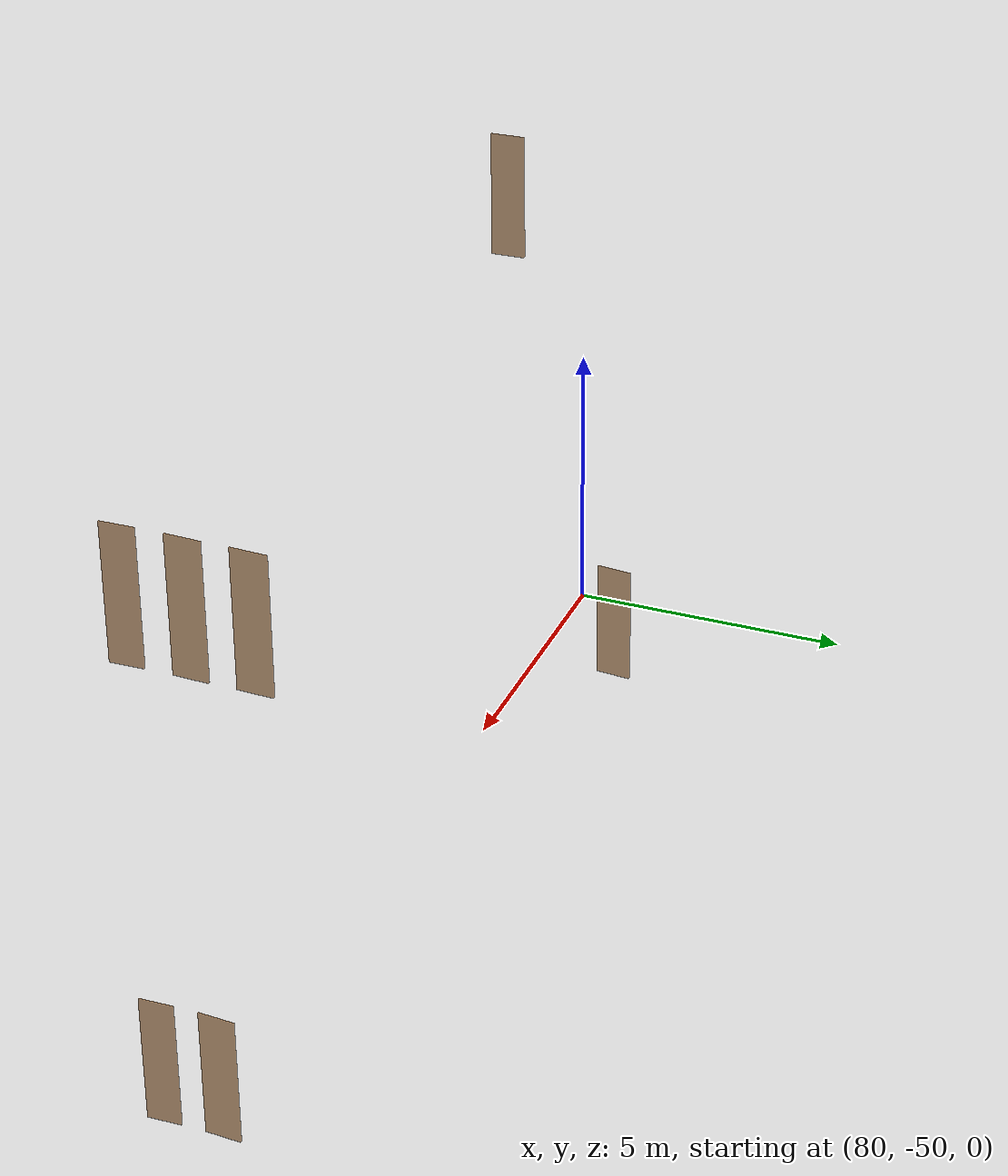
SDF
<sdf version="1.7">
 <world name="sim_world">
  <model name="bano012">
   <pose>82.44700350917586 -48.49807562310532 0.0 0 0 1.470619011720645</pose>
   <link name="right">
    <pose>0 0 1.11 0 0 0</pose>
    <visual name="right_visual">
     <geometry><box><size>0.6442041280268124 0.03 2.2</size></box></geometry>
     <material>
      <ambient>0.5 0.25 0 0.6</ambient>
      <diffuse>0.5 0.25 0 0.6</diffuse>
      <pbr><metal><metalness>0.0</metalness></metal></pbr>
     </material>
    </visual>
    <collision name="right_collision">
     <geometry><box><size>0.6442041280268124 0.03 2.2</size></box></geometry>
     <surface><contact><collide_bitmask>0x02</collide_bitmask></contact></surface>
    </collision>
    <inertial>
     <mass>50.0</mass>
     <inertia><ixx>20.17041666666667</ixx><iyy>21.895828994028278</iyy><izz>1.732912327361607</izz></inertia>
    </inertial>
   </link>
   <joint name="right_joint" type="revolute">
    <parent>world</parent>
    <child>right</child>
    <axis><xyz>0 0 -1</xyz><limit><lower>0</lower><upper>1.57</upper></limit></axis>
    <pose>0.3271020640134062 0 0 0 0 0</pose>
   </joint>
   <plugin name="register_component" filename="libregister_component.so">
    <component name="Door">
     <v_max_door>0.5</v_max_door>
     <a_max_door>0.3</a_max_door>
     <a_nom_door>0.15</a_nom_door>
     <dx_min_door>0.01</dx_min_door>
     <f_max_door>500.0</f_max_door>
     <ros_interface>true</ros_interface>
     <door name="bano012" type="SwingDoor" left_joint_name="empty_joint" right_joint_name="right_joint"/>
    </component>
   </plugin>
  </model>
  <model name="bano019">
   <pose>96.59748511829628 -49.48174535185072 0.0 0 0 1.495199436193495</pose>
   <link name="right">
    <pose>0 0 1.11 0 0 0</pose>
    <visual name="right_visual">
     <geometry><box><size>0.5950692042728132 0.03 2.2</size></box></geometry>
     <material>
      <ambient>0.5 0.25 0 0.6</ambient>
      <diffuse>0.5 0.25 0 0.6</diffuse>
      <pbr><metal><metalness>0.0</metalness></metal></pbr>
     </material>
    </visual>
    <collision name="right_collision">
     <geometry><box><size>0.5950692042728132 0.03 2.2</size></box></geometry>
     <surface><contact><collide_bitmask>0x02</collide_bitmask></contact></surface>
    </collision>
    <inertial>
     <mass>50.0</mass>
     <inertia><ixx>20.17041666666667</ixx><iyy>21.642113991141166</iyy><izz>1.479197324474496</izz></inertia>
    </inertial>
   </link>
   <joint name="right_joint" type="revolute">
    <parent>world</parent>
    <child>right</child>
    <axis><xyz>0 0 1</xyz><limit><lower>0</lower><upper>1.57</upper></limit></axis>
    <pose>0.3025346021364066 0 0 0 0 0</pose>
   </joint>
   <plugin name="register_component" filename="libregister_component.so">
    <component name="Door">
     <v_max_door>0.5</v_max_door>
     <a_max_door>0.3</a_max_door>
     <a_nom_door>0.15</a_nom_door>
     <dx_min_door>0.01</dx_min_door>
     <f_max_door>500.0</f_max_door>
     <ros_interface>true</ros_interface>
     <door name="bano019" type="SwingDoor" left_joint_name="empty_joint" right_joint_name="right_joint"/>
    </component>
   </plugin>
  </model>
  <model name="bano020">
   <pose>96.5792037557703 -50.459882415325815 0.0 0 0 1.5869124666132146</pose>
   <link name="right">
    <pose>0 0 1.11 0 0 0</pose>
    <visual name="right_visual">
     <geometry><box><size>0.5568519631551812 0.03 2.2</size></box></geometry>
     <material>
      <ambient>0.5 0.25 0 0.6</ambient>
      <diffuse>0.5 0.25 0 0.6</diffuse>
      <pbr><metal><metalness>0.0</metalness></metal></pbr>
     </material>
    </visual>
    <collision name="right_collision">
     <geometry><box><size>0.5568519631551812 0.03 2.2</size></box></geometry>
     <surface><contact><collide_bitmask>0x02</collide_bitmask></contact></surface>
    </collision>
    <inertial>
     <mass>50.0</mass>
     <inertia><ixx>20.17041666666667</ixx><iyy>21.45868378695742</iyy><izz>1.2957671202907468</izz></inertia>
    </inertial>
   </link>
   <joint name="right_joint" type="revolute">
    <parent>world</parent>
    <child>right</child>
    <axis><xyz>0 0 1</xyz><limit><lower>0</lower><upper>1.57</upper></limit></axis>
    <pose>0.2834259815775906 0 0 0 0 0</pose>
   </joint>
   <plugin name="register_component" filename="libregister_component.so">
    <component name="Door">
     <v_max_door>0.5</v_max_door>
     <a_max_door>0.3</a_max_door>
     <a_nom_door>0.15</a_nom_door>
     <dx_min_door>0.01</dx_min_door>
     <f_max_door>500.0</f_max_door>
     <ros_interface>true</ros_interface>
     <door name="bano020" type="SwingDoor" left_joint_name="empty_joint" right_joint_name="right_joint"/>
    </component>
   </plugin>
  </model>
  <model name="bano14">
   <pose>82.4262059273079 -50.48561429947538 8.0 0 0 1.6109163680434315</pose>
   <link name="right">
    <pose>0 0 1.11 0 0 0</pose>
    <visual name="right_visual">
     <geometry><box><size>0.5847346024385863 0.03 2.2</size></box></geometry>
     <material>
      <ambient>0.5 0.25 0 0.6</ambient>
      <diffuse>0.5 0.25 0 0.6</diffuse>
      <pbr><metal><metalness>0.0</metalness></metal></pbr>
     </material>
    </visual>
    <collision name="right_collision">
     <geometry><box><size>0.5847346024385863 0.03 2.2</size></box></geometry>
     <surface><contact><collide_bitmask>0x02</collide_bitmask></contact></surface>
    </collision>
    <inertial>
     <mass>50.0</mass>
     <inertia><ixx>20.17041666666667</ixx><iyy>21.591310647037552</iyy><izz>1.4283939803708818</izz></inertia>
    </inertial>
   </link>
   <joint name="right_joint" type="revolute">
    <parent>world</parent>
    <child>right</child>
    <axis><xyz>0 0 -1</xyz><limit><lower>0</lower><upper>1.57</upper></limit></axis>
    <pose>0.29736730121929317 0 0 0 0 0</pose>
   </joint>
   <plugin name="register_component" filename="libregister_component.so">
    <component name="Door">
     <v_max_door>0.5</v_max_door>
     <a_max_door>0.3</a_max_door>
     <a_nom_door>0.15</a_nom_door>
     <dx_min_door>0.01</dx_min_door>
     <f_max_door>500.0</f_max_door>
     <ros_interface>true</ros_interface>
     <door name="bano14" type="SwingDoor" left_joint_name="empty_joint" right_joint_name="right_joint"/>
    </component>
   </plugin>
  </model>
  <model name="bano18">
   <pose>96.63959571975191 -48.52446806274959 8.0 0 0 1.5228293427319184</pose>
   <link name="right">
    <pose>0 0 1.11 0 0 0</pose>
    <visual name="right_visual">
     <geometry><box><size>0.5608595809617218 0.03 2.2</size></box></geometry>
     <material>
      <ambient>0.5 0.25 0 0.6</ambient>
      <diffuse>0.5 0.25 0 0.6</diffuse>
      <pbr><metal><metalness>0.0</metalness></metal></pbr>
     </material>
    </visual>
    <collision name="right_collision">
     <geometry><box><size>0.5608595809617218 0.03 2.2</size></box></geometry>
     <surface><contact><collide_bitmask>0x02</collide_bitmask></contact></surface>
    </collision>
    <inertial>
     <mass>50.0</mass>
     <inertia><ixx>20.17041666666667</ixx><iyy>21.477347789818996</iyy><izz>1.314431123152326</izz></inertia>
    </inertial>
   </link>
   <joint name="right_joint" type="revolute">
    <parent>world</parent>
    <child>right</child>
    <axis><xyz>0 0 1</xyz><limit><lower>0</lower><upper>1.57</upper></limit></axis>
    <pose>0.2854297904808609 0 0 0 0 0</pose>
   </joint>
   <plugin name="register_component" filename="libregister_component.so">
    <component name="Door">
     <v_max_door>0.5</v_max_door>
     <a_max_door>0.3</a_max_door>
     <a_nom_door>0.15</a_nom_door>
     <dx_min_door>0.01</dx_min_door>
     <f_max_door>500.0</f_max_door>
     <ros_interface>true</ros_interface>
     <door name="bano18" type="SwingDoor" left_joint_name="empty_joint" right_joint_name="right_joint"/>
    </component>
   </plugin>
  </model>
  <model name="bano19">
   <pose>96.61283543717667 -49.501921607688836 8.0 0 0 1.5239625312499971</pose>
   <link name="right">
    <pose>0 0 1.11 0 0 0</pose>
    <visual name="right_visual">
     <geometry><box><size>0.5516831153719108 0.03 2.2</size></box></geometry>
     <material>
      <ambient>0.5 0.25 0 0.6</ambient>
      <diffuse>0.5 0.25 0 0.6</diffuse>
      <pbr><metal><metalness>0.0</metalness></metal></pbr>
     </material>
    </visual>
    <collision name="right_collision">
     <geometry><box><size>0.5516831153719108 0.03 2.2</size></box></geometry>
     <surface><contact><collide_bitmask>0x02</collide_bitmask></contact></surface>
    </collision>
    <inertial>
     <mass>50.0</mass>
     <inertia><ixx>20.17041666666667</ixx><iyy>21.43480941577691</iyy><izz>1.271892749110238</izz></inertia>
    </inertial>
   </link>
   <joint name="right_joint" type="revolute">
    <parent>world</parent>
    <child>right</child>
    <axis><xyz>0 0 1</xyz><limit><lower>0</lower><upper>1.57</upper></limit></axis>
    <pose>0.2808415576859554 0 0 0 0 0</pose>
   </joint>
   <plugin name="register_component" filename="libregister_component.so">
    <component name="Door">
     <v_max_door>0.5</v_max_door>
     <a_max_door>0.3</a_max_door>
     <a_nom_door>0.15</a_nom_door>
     <dx_min_door>0.01</dx_min_door>
     <f_max_door>500.0</f_max_door>
     <ros_interface>true</ros_interface>
     <door name="bano19" type="SwingDoor" left_joint_name="empty_joint" right_joint_name="right_joint"/>
    </component>
   </plugin>
  </model>
  <model name="bano20">
   <pose>96.60297657312375 -50.4766449259702 8.0 0 0 1.5826926319735042</pose>
   <link name="right">
    <pose>0 0 1.11 0 0 0</pose>
    <visual name="right_visual">
     <geometry><box><size>0.5302247300390378 0.03 2.2</size></box></geometry>
     <material>
      <ambient>0.5 0.25 0 0.6</ambient>
      <diffuse>0.5 0.25 0 0.6</diffuse>
      <pbr><metal><metalness>0.0</metalness></metal></pbr>
     </material>
    </visual>
    <collision name="right_collision">
     <geometry><box><size>0.5302247300390378 0.03 2.2</size></box></geometry>
     <surface><contact><collide_bitmask>0x02</collide_bitmask></contact></surface>
    </collision>
    <inertial>
     <mass>50.0</mass>
     <inertia><ixx>20.17041666666667</ixx><iyy>21.33807610143738</iyy><izz>1.1751594347707106</izz></inertia>
    </inertial>
   </link>
   <joint name="right_joint" type="revolute">
    <parent>world</parent>
    <child>right</child>
    <axis><xyz>0 0 1</xyz><limit><lower>0</lower><upper>1.57</upper></limit></axis>
    <pose>0.2701123650195189 0 0 0 0 0</pose>
   </joint>
   <plugin name="register_component" filename="libregister_component.so">
    <component name="Door">
     <v_max_door>0.5</v_max_door>
     <a_max_door>0.3</a_max_door>
     <a_nom_door>0.15</a_nom_door>
     <dx_min_door>0.01</dx_min_door>
     <f_max_door>500.0</f_max_door>
     <ros_interface>true</ros_interface>
     <door name="bano20" type="SwingDoor" left_joint_name="empty_joint" right_joint_name="right_joint"/>
    </component>
   </plugin>
  </model>
 </world>
</sdf>
